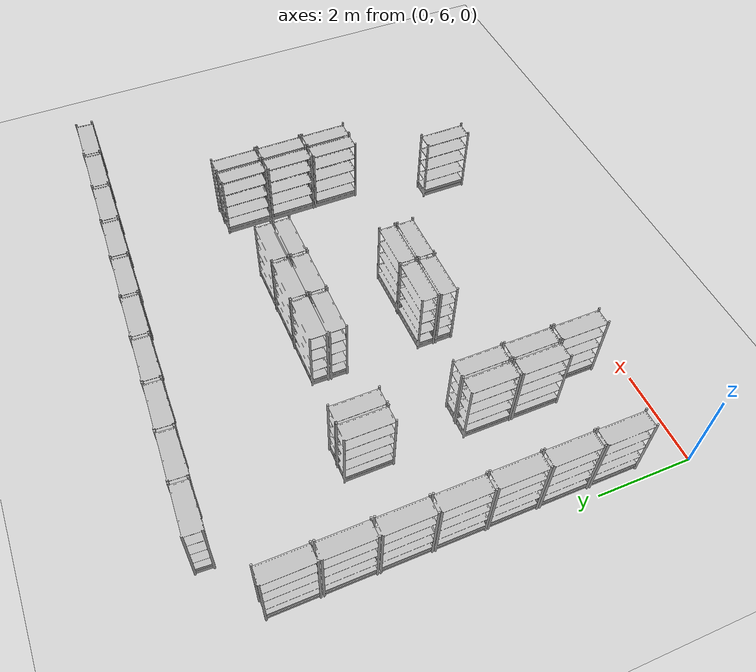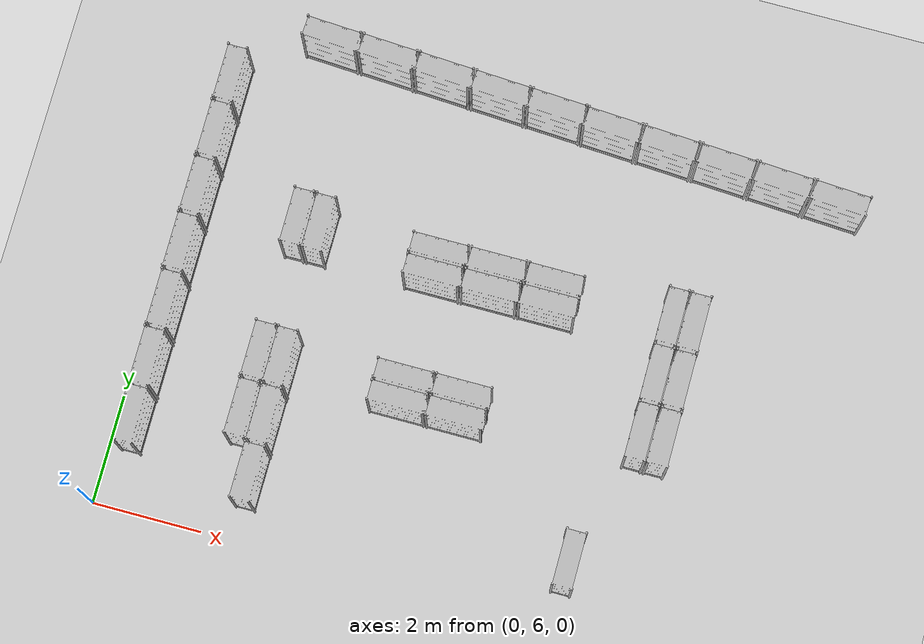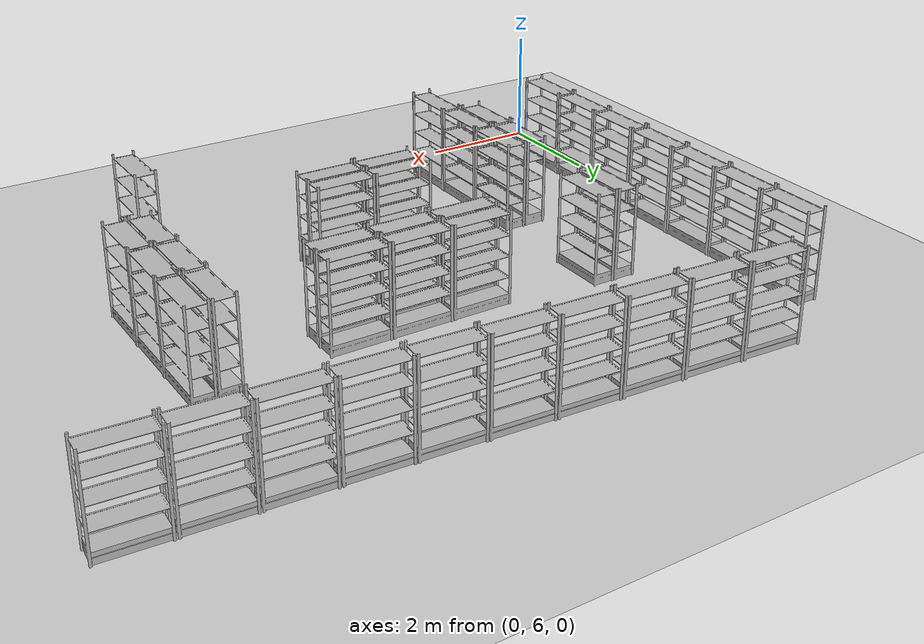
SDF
<sdf version="1.6">
 <world name="default">
  <model name="ground_plane">
   <static>1</static>
   <link name="link">
    <collision name="collision">
     <geometry><plane><normal>0 0 1</normal><size>100 100</size></plane></geometry>
     <surface>
      <contact><collide_bitmask>65535</collide_bitmask></contact>
      <friction><ode><mu>1000</mu><mu2>1000</mu2></ode></friction>
     </surface>
    </collision>
    <visual name="visual">
     <cast_shadows>0</cast_shadows>
     <geometry><plane><normal>0 0 1</normal><size>100 100</size></plane></geometry>
     <material>
      <script><uri>file://media/materials/scripts/gazebo.material</uri><name>Gazebo/Grey</name></script>
     </material>
    </visual>
   </link>
  </model>
  <model name="store_shelf_moduled_9">
   <link name="link">
    <collision name="collision">
     <geometry><mesh><uri>model://store_shelf_moduled/meshes/store_shelf_moduled.dae</uri></mesh></geometry>
    </collision>
    <visual name="visual">
     <geometry><mesh><uri>model://store_shelf_moduled/meshes/store_shelf_moduled.dae</uri></mesh></geometry>
    </visual>
    <inertial>
     <mass>1000</mass>
     <inertia>
      <ixx>840083</ixx>
      <ixy>0</ixy>
      <ixz>0</ixz>
      <iyy>475500</iyy>
      <iyz>0</iyz>
      <izz>1.30208e+06</izz>
     </inertia>
    </inertial>
   </link>
   <static>1</static>
   <pose>12.02416 14.70017 0 0 0 3.083153</pose>
  </model>
  <model name="store_shelf_moduled_10">
   <link name="link">
    <collision name="collision">
     <geometry><mesh><uri>model://store_shelf_moduled/meshes/store_shelf_moduled.dae</uri></mesh></geometry>
    </collision>
    <visual name="visual">
     <geometry><mesh><uri>model://store_shelf_moduled/meshes/store_shelf_moduled.dae</uri></mesh></geometry>
    </visual>
    <inertial>
     <mass>1000</mass>
     <inertia>
      <ixx>840083</ixx>
      <ixy>0</ixy>
      <ixz>0</ixz>
      <iyy>475500</iyy>
      <iyz>0</iyz>
      <izz>1.30208e+06</izz>
     </inertia>
    </inertial>
   </link>
   <static>1</static>
   <pose>10.96416 14.76017 0 0 0 3.083153</pose>
  </model>
  <model name="store_shelf_moduled_11">
   <link name="link">
    <collision name="collision">
     <geometry><mesh><uri>model://store_shelf_moduled/meshes/store_shelf_moduled.dae</uri></mesh></geometry>
    </collision>
    <visual name="visual">
     <geometry><mesh><uri>model://store_shelf_moduled/meshes/store_shelf_moduled.dae</uri></mesh></geometry>
    </visual>
    <inertial>
     <mass>1000</mass>
     <inertia>
      <ixx>840083</ixx>
      <ixy>0</ixy>
      <ixz>0</ixz>
      <iyy>475500</iyy>
      <iyz>0</iyz>
      <izz>1.30208e+06</izz>
     </inertia>
    </inertial>
   </link>
   <static>1</static>
   <pose>9.90416 14.82017 0 0 0 3.083153</pose>
  </model>
  <model name="store_shelf_moduled_12">
   <link name="link">
    <collision name="collision">
     <geometry><mesh><uri>model://store_shelf_moduled/meshes/store_shelf_moduled.dae</uri></mesh></geometry>
    </collision>
    <visual name="visual">
     <geometry><mesh><uri>model://store_shelf_moduled/meshes/store_shelf_moduled.dae</uri></mesh></geometry>
    </visual>
    <inertial>
     <mass>1000</mass>
     <inertia>
      <ixx>840083</ixx>
      <ixy>0</ixy>
      <ixz>0</ixz>
      <iyy>475500</iyy>
      <iyz>0</iyz>
      <izz>1.30208e+06</izz>
     </inertia>
    </inertial>
   </link>
   <static>1</static>
   <pose>8.844159 14.88017 0 0 0 3.083153</pose>
  </model>
  <model name="store_shelf_moduled_13">
   <link name="link">
    <collision name="collision">
     <geometry><mesh><uri>model://store_shelf_moduled/meshes/store_shelf_moduled.dae</uri></mesh></geometry>
    </collision>
    <visual name="visual">
     <geometry><mesh><uri>model://store_shelf_moduled/meshes/store_shelf_moduled.dae</uri></mesh></geometry>
    </visual>
    <inertial>
     <mass>1000</mass>
     <inertia>
      <ixx>840083</ixx>
      <ixy>0</ixy>
      <ixz>0</ixz>
      <iyy>475500</iyy>
      <iyz>0</iyz>
      <izz>1.30208e+06</izz>
     </inertia>
    </inertial>
   </link>
   <static>1</static>
   <pose>7.78416 14.94017 0 0 0 3.083153</pose>
  </model>
  <model name="store_shelf_moduled_14">
   <link name="link">
    <collision name="collision">
     <geometry><mesh><uri>model://store_shelf_moduled/meshes/store_shelf_moduled.dae</uri></mesh></geometry>
    </collision>
    <visual name="visual">
     <geometry><mesh><uri>model://store_shelf_moduled/meshes/store_shelf_moduled.dae</uri></mesh></geometry>
    </visual>
    <inertial>
     <mass>1000</mass>
     <inertia>
      <ixx>840083</ixx>
      <ixy>0</ixy>
      <ixz>0</ixz>
      <iyy>475500</iyy>
      <iyz>0</iyz>
      <izz>1.30208e+06</izz>
     </inertia>
    </inertial>
   </link>
   <static>1</static>
   <pose>6.734159 15.01017 0 0 0 3.083153</pose>
  </model>
  <model name="store_shelf_moduled_15">
   <link name="link">
    <collision name="collision">
     <geometry><mesh><uri>model://store_shelf_moduled/meshes/store_shelf_moduled.dae</uri></mesh></geometry>
    </collision>
    <visual name="visual">
     <geometry><mesh><uri>model://store_shelf_moduled/meshes/store_shelf_moduled.dae</uri></mesh></geometry>
    </visual>
    <inertial>
     <mass>1000</mass>
     <inertia>
      <ixx>840083</ixx>
      <ixy>0</ixy>
      <ixz>0</ixz>
      <iyy>475500</iyy>
      <iyz>0</iyz>
      <izz>1.30208e+06</izz>
     </inertia>
    </inertial>
   </link>
   <static>1</static>
   <pose>5.67416 15.07017 0 0 0 3.083153</pose>
  </model>
  <model name="store_shelf_moduled_16">
   <link name="link">
    <collision name="collision">
     <geometry><mesh><uri>model://store_shelf_moduled/meshes/store_shelf_moduled.dae</uri></mesh></geometry>
    </collision>
    <visual name="visual">
     <geometry><mesh><uri>model://store_shelf_moduled/meshes/store_shelf_moduled.dae</uri></mesh></geometry>
    </visual>
    <inertial>
     <mass>1000</mass>
     <inertia>
      <ixx>840083</ixx>
      <ixy>0</ixy>
      <ixz>0</ixz>
      <iyy>475500</iyy>
      <iyz>0</iyz>
      <izz>1.30208e+06</izz>
     </inertia>
    </inertial>
   </link>
   <static>1</static>
   <pose>4.614159 15.13017 0 0 0 3.083153</pose>
  </model>
  <model name="store_shelf_moduled_17">
   <link name="link">
    <collision name="collision">
     <geometry><mesh><uri>model://store_shelf_moduled/meshes/store_shelf_moduled.dae</uri></mesh></geometry>
    </collision>
    <visual name="visual">
     <geometry><mesh><uri>model://store_shelf_moduled/meshes/store_shelf_moduled.dae</uri></mesh></geometry>
    </visual>
    <inertial>
     <mass>1000</mass>
     <inertia>
      <ixx>840083</ixx>
      <ixy>0</ixy>
      <ixz>0</ixz>
      <iyy>475500</iyy>
      <iyz>0</iyz>
      <izz>1.30208e+06</izz>
     </inertia>
    </inertial>
   </link>
   <static>1</static>
   <pose>3.554159 15.19017 0 0 0 3.083153</pose>
  </model>
  <model name="store_shelf_moduled_18">
   <link name="link">
    <collision name="collision">
     <geometry><mesh><uri>model://store_shelf_moduled/meshes/store_shelf_moduled.dae</uri></mesh></geometry>
    </collision>
    <visual name="visual">
     <geometry><mesh><uri>model://store_shelf_moduled/meshes/store_shelf_moduled.dae</uri></mesh></geometry>
    </visual>
    <inertial>
     <mass>1000</mass>
     <inertia>
      <ixx>840083</ixx>
      <ixy>0</ixy>
      <ixz>0</ixz>
      <iyy>475500</iyy>
      <iyz>0</iyz>
      <izz>1.30208e+06</izz>
     </inertia>
    </inertial>
   </link>
   <static>1</static>
   <pose>2.494159 15.25017 0 0 0 3.083153</pose>
  </model>
  <model name="store_shelf_moduled_19">
   <link name="link">
    <collision name="collision">
     <geometry><mesh><uri>model://store_shelf_moduled/meshes/store_shelf_moduled.dae</uri></mesh></geometry>
    </collision>
    <visual name="visual">
     <geometry><mesh><uri>model://store_shelf_moduled/meshes/store_shelf_moduled.dae</uri></mesh></geometry>
    </visual>
    <inertial>
     <mass>1000</mass>
     <inertia>
      <ixx>840083</ixx>
      <ixy>0</ixy>
      <ixz>0</ixz>
      <iyy>475500</iyy>
      <iyz>0</iyz>
      <izz>1.30208e+06</izz>
     </inertia>
    </inertial>
   </link>
   <static>1</static>
   <pose>0.1999998 14.4402 0 0 0 -1.568844</pose>
  </model>
  <model name="store_shelf_moduled_20">
   <link name="link">
    <collision name="collision">
     <geometry><mesh><uri>model://store_shelf_moduled/meshes/store_shelf_moduled.dae</uri></mesh></geometry>
    </collision>
    <visual name="visual">
     <geometry><mesh><uri>model://store_shelf_moduled/meshes/store_shelf_moduled.dae</uri></mesh></geometry>
    </visual>
    <inertial>
     <mass>1000</mass>
     <inertia>
      <ixx>840083</ixx>
      <ixy>0</ixy>
      <ixz>0</ixz>
      <iyy>475500</iyy>
      <iyz>0</iyz>
      <izz>1.30208e+06</izz>
     </inertia>
    </inertial>
   </link>
   <static>1</static>
   <pose>0.1999998 13.3802 0 0 0 -1.568844</pose>
  </model>
  <model name="store_shelf_moduled_21">
   <link name="link">
    <collision name="collision">
     <geometry><mesh><uri>model://store_shelf_moduled/meshes/store_shelf_moduled.dae</uri></mesh></geometry>
    </collision>
    <visual name="visual">
     <geometry><mesh><uri>model://store_shelf_moduled/meshes/store_shelf_moduled.dae</uri></mesh></geometry>
    </visual>
    <inertial>
     <mass>1000</mass>
     <inertia>
      <ixx>840083</ixx>
      <ixy>0</ixy>
      <ixz>0</ixz>
      <iyy>475500</iyy>
      <iyz>0</iyz>
      <izz>1.30208e+06</izz>
     </inertia>
    </inertial>
   </link>
   <static>1</static>
   <pose>0.1999998 12.3202 0 0 0 -1.568844</pose>
  </model>
  <model name="store_shelf_moduled_22">
   <link name="link">
    <collision name="collision">
     <geometry><mesh><uri>model://store_shelf_moduled/meshes/store_shelf_moduled.dae</uri></mesh></geometry>
    </collision>
    <visual name="visual">
     <geometry><mesh><uri>model://store_shelf_moduled/meshes/store_shelf_moduled.dae</uri></mesh></geometry>
    </visual>
    <inertial>
     <mass>1000</mass>
     <inertia>
      <ixx>840083</ixx>
      <ixy>0</ixy>
      <ixz>0</ixz>
      <iyy>475500</iyy>
      <iyz>0</iyz>
      <izz>1.30208e+06</izz>
     </inertia>
    </inertial>
   </link>
   <static>1</static>
   <pose>0.1999998 11.2602 0 0 0 -1.568844</pose>
  </model>
  <model name="store_shelf_moduled_23">
   <link name="link">
    <collision name="collision">
     <geometry><mesh><uri>model://store_shelf_moduled/meshes/store_shelf_moduled.dae</uri></mesh></geometry>
    </collision>
    <visual name="visual">
     <geometry><mesh><uri>model://store_shelf_moduled/meshes/store_shelf_moduled.dae</uri></mesh></geometry>
    </visual>
    <inertial>
     <mass>1000</mass>
     <inertia>
      <ixx>840083</ixx>
      <ixy>0</ixy>
      <ixz>0</ixz>
      <iyy>475500</iyy>
      <iyz>0</iyz>
      <izz>1.30208e+06</izz>
     </inertia>
    </inertial>
   </link>
   <static>1</static>
   <pose>0.2099998 10.2002 0 0 0 -1.568844</pose>
  </model>
  <model name="store_shelf_moduled_24">
   <link name="link">
    <collision name="collision">
     <geometry><mesh><uri>model://store_shelf_moduled/meshes/store_shelf_moduled.dae</uri></mesh></geometry>
    </collision>
    <visual name="visual">
     <geometry><mesh><uri>model://store_shelf_moduled/meshes/store_shelf_moduled.dae</uri></mesh></geometry>
    </visual>
    <inertial>
     <mass>1000</mass>
     <inertia>
      <ixx>840083</ixx>
      <ixy>0</ixy>
      <ixz>0</ixz>
      <iyy>475500</iyy>
      <iyz>0</iyz>
      <izz>1.30208e+06</izz>
     </inertia>
    </inertial>
   </link>
   <static>1</static>
   <pose>0.2099998 9.140195 0 0 0 -1.568844</pose>
  </model>
  <model name="store_shelf_moduled_25">
   <link name="link">
    <collision name="collision">
     <geometry><mesh><uri>model://store_shelf_moduled/meshes/store_shelf_moduled.dae</uri></mesh></geometry>
    </collision>
    <visual name="visual">
     <geometry><mesh><uri>model://store_shelf_moduled/meshes/store_shelf_moduled.dae</uri></mesh></geometry>
    </visual>
    <inertial>
     <mass>1000</mass>
     <inertia>
      <ixx>840083</ixx>
      <ixy>0</ixy>
      <ixz>0</ixz>
      <iyy>475500</iyy>
      <iyz>0</iyz>
      <izz>1.30208e+06</izz>
     </inertia>
    </inertial>
   </link>
   <static>1</static>
   <pose>0.2099998 8.080195 0 0 0 -1.568844</pose>
  </model>
  <model name="store_shelf_moduled_36">
   <link name="link">
    <collision name="collision">
     <geometry><mesh><uri>model://store_shelf_moduled/meshes/store_shelf_moduled.dae</uri></mesh></geometry>
    </collision>
    <visual name="visual">
     <geometry><mesh><uri>model://store_shelf_moduled/meshes/store_shelf_moduled.dae</uri></mesh></geometry>
    </visual>
    <inertial>
     <mass>1000</mass>
     <inertia>
      <ixx>840083</ixx>
      <ixy>0</ixy>
      <ixz>0</ixz>
      <iyy>475500</iyy>
      <iyz>0</iyz>
      <izz>1.30208e+06</izz>
     </inertia>
    </inertial>
   </link>
   <static>1</static>
   <pose>2.47 7.63 0 0 0 -1.570796</pose>
  </model>
  <model name="store_shelf_moduled_37">
   <link name="link">
    <collision name="collision">
     <geometry><mesh><uri>model://store_shelf_moduled/meshes/store_shelf_moduled.dae</uri></mesh></geometry>
    </collision>
    <visual name="visual">
     <geometry><mesh><uri>model://store_shelf_moduled/meshes/store_shelf_moduled.dae</uri></mesh></geometry>
    </visual>
    <inertial>
     <mass>1000</mass>
     <inertia>
      <ixx>840083</ixx>
      <ixy>0</ixy>
      <ixz>0</ixz>
      <iyy>475500</iyy>
      <iyz>0</iyz>
      <izz>1.30208e+06</izz>
     </inertia>
    </inertial>
   </link>
   <static>1</static>
   <pose>2.47 7.63 0 0 0 1.570796</pose>
  </model>
  <model name="store_shelf_moduled_38">
   <link name="link">
    <collision name="collision">
     <geometry><mesh><uri>model://store_shelf_moduled/meshes/store_shelf_moduled.dae</uri></mesh></geometry>
    </collision>
    <visual name="visual">
     <geometry><mesh><uri>model://store_shelf_moduled/meshes/store_shelf_moduled.dae</uri></mesh></geometry>
    </visual>
    <inertial>
     <mass>1000</mass>
     <inertia>
      <ixx>840083</ixx>
      <ixy>0</ixy>
      <ixz>0</ixz>
      <iyy>475500</iyy>
      <iyz>0</iyz>
      <izz>1.30208e+06</izz>
     </inertia>
    </inertial>
   </link>
   <static>1</static>
   <pose>2.47 8.69 0 0 0 -1.570796</pose>
  </model>
  <model name="store_shelf_moduled_39">
   <link name="link">
    <collision name="collision">
     <geometry><mesh><uri>model://store_shelf_moduled/meshes/store_shelf_moduled.dae</uri></mesh></geometry>
    </collision>
    <visual name="visual">
     <geometry><mesh><uri>model://store_shelf_moduled/meshes/store_shelf_moduled.dae</uri></mesh></geometry>
    </visual>
    <inertial>
     <mass>1000</mass>
     <inertia>
      <ixx>840083</ixx>
      <ixy>0</ixy>
      <ixz>0</ixz>
      <iyy>475500</iyy>
      <iyz>0</iyz>
      <izz>1.30208e+06</izz>
     </inertia>
    </inertial>
   </link>
   <static>1</static>
   <pose>2.47 8.69 0 0 0 1.570796</pose>
  </model>
  <model name="store_shelf_moduled_40">
   <link name="link">
    <collision name="collision">
     <geometry><mesh><uri>model://store_shelf_moduled/meshes/store_shelf_moduled.dae</uri></mesh></geometry>
    </collision>
    <visual name="visual">
     <geometry><mesh><uri>model://store_shelf_moduled/meshes/store_shelf_moduled.dae</uri></mesh></geometry>
    </visual>
    <inertial>
     <mass>1000</mass>
     <inertia>
      <ixx>840083</ixx>
      <ixy>0</ixy>
      <ixz>0</ixz>
      <iyy>475500</iyy>
      <iyz>0</iyz>
      <izz>1.30208e+06</izz>
     </inertia>
    </inertial>
   </link>
   <static>1</static>
   <pose>2.47 9.75 0 0 0 -1.570796</pose>
  </model>
  <model name="store_shelf_moduled_43">
   <link name="link">
    <collision name="collision">
     <geometry><mesh><uri>model://store_shelf_moduled/meshes/store_shelf_moduled.dae</uri></mesh></geometry>
    </collision>
    <visual name="visual">
     <geometry><mesh><uri>model://store_shelf_moduled/meshes/store_shelf_moduled.dae</uri></mesh></geometry>
    </visual>
    <inertial>
     <mass>1000</mass>
     <inertia>
      <ixx>840083</ixx>
      <ixy>0</ixy>
      <ixz>0</ixz>
      <iyy>475500</iyy>
      <iyz>0</iyz>
      <izz>1.30208e+06</izz>
     </inertia>
    </inertial>
   </link>
   <static>1</static>
   <pose>2.47 11.17 0 0 0 1.570796</pose>
  </model>
  <model name="store_shelf_moduled_44">
   <link name="link">
    <collision name="collision">
     <geometry><mesh><uri>model://store_shelf_moduled/meshes/store_shelf_moduled.dae</uri></mesh></geometry>
    </collision>
    <visual name="visual">
     <geometry><mesh><uri>model://store_shelf_moduled/meshes/store_shelf_moduled.dae</uri></mesh></geometry>
    </visual>
    <inertial>
     <mass>1000</mass>
     <inertia>
      <ixx>840083</ixx>
      <ixy>0</ixy>
      <ixz>0</ixz>
      <iyy>475500</iyy>
      <iyz>0</iyz>
      <izz>1.30208e+06</izz>
     </inertia>
    </inertial>
   </link>
   <static>1</static>
   <pose>2.47 12.23 0 0 0 -1.570796</pose>
  </model>
  <model name="store_shelf_moduled_45">
   <link name="link">
    <collision name="collision">
     <geometry><mesh><uri>model://store_shelf_moduled/meshes/store_shelf_moduled.dae</uri></mesh></geometry>
    </collision>
    <visual name="visual">
     <geometry><mesh><uri>model://store_shelf_moduled/meshes/store_shelf_moduled.dae</uri></mesh></geometry>
    </visual>
    <inertial>
     <mass>1000</mass>
     <inertia>
      <ixx>840083</ixx>
      <ixy>0</ixy>
      <ixz>0</ixz>
      <iyy>475500</iyy>
      <iyz>0</iyz>
      <izz>1.30208e+06</izz>
     </inertia>
    </inertial>
   </link>
   <static>1</static>
   <pose>9.33 9.05 0 0 0 1.570796</pose>
  </model>
  <model name="store_shelf_moduled_46">
   <link name="link">
    <collision name="collision">
     <geometry><mesh><uri>model://store_shelf_moduled/meshes/store_shelf_moduled.dae</uri></mesh></geometry>
    </collision>
    <visual name="visual">
     <geometry><mesh><uri>model://store_shelf_moduled/meshes/store_shelf_moduled.dae</uri></mesh></geometry>
    </visual>
    <inertial>
     <mass>1000</mass>
     <inertia>
      <ixx>840083</ixx>
      <ixy>0</ixy>
      <ixz>0</ixz>
      <iyy>475500</iyy>
      <iyz>0</iyz>
      <izz>1.30208e+06</izz>
     </inertia>
    </inertial>
   </link>
   <static>1</static>
   <pose>9.33 10.11 0 0 0 -1.570796</pose>
  </model>
  <model name="store_shelf_moduled_47">
   <link name="link">
    <collision name="collision">
     <geometry><mesh><uri>model://store_shelf_moduled/meshes/store_shelf_moduled.dae</uri></mesh></geometry>
    </collision>
    <visual name="visual">
     <geometry><mesh><uri>model://store_shelf_moduled/meshes/store_shelf_moduled.dae</uri></mesh></geometry>
    </visual>
    <inertial>
     <mass>1000</mass>
     <inertia>
      <ixx>840083</ixx>
      <ixy>0</ixy>
      <ixz>0</ixz>
      <iyy>475500</iyy>
      <iyz>0</iyz>
      <izz>1.30208e+06</izz>
     </inertia>
    </inertial>
   </link>
   <static>1</static>
   <pose>9.33 10.11 0 0 0 1.570796</pose>
  </model>
  <model name="store_shelf_moduled_48">
   <link name="link">
    <collision name="collision">
     <geometry><mesh><uri>model://store_shelf_moduled/meshes/store_shelf_moduled.dae</uri></mesh></geometry>
    </collision>
    <visual name="visual">
     <geometry><mesh><uri>model://store_shelf_moduled/meshes/store_shelf_moduled.dae</uri></mesh></geometry>
    </visual>
    <inertial>
     <mass>1000</mass>
     <inertia>
      <ixx>840083</ixx>
      <ixy>0</ixy>
      <ixz>0</ixz>
      <iyy>475500</iyy>
      <iyz>0</iyz>
      <izz>1.30208e+06</izz>
     </inertia>
    </inertial>
   </link>
   <static>1</static>
   <pose>9.33 11.17 0 0 0 -1.570796</pose>
  </model>
  <model name="store_shelf_moduled_49">
   <link name="link">
    <collision name="collision">
     <geometry><mesh><uri>model://store_shelf_moduled/meshes/store_shelf_moduled.dae</uri></mesh></geometry>
    </collision>
    <visual name="visual">
     <geometry><mesh><uri>model://store_shelf_moduled/meshes/store_shelf_moduled.dae</uri></mesh></geometry>
    </visual>
    <inertial>
     <mass>1000</mass>
     <inertia>
      <ixx>840083</ixx>
      <ixy>0</ixy>
      <ixz>0</ixz>
      <iyy>475500</iyy>
      <iyz>0</iyz>
      <izz>1.30208e+06</izz>
     </inertia>
    </inertial>
   </link>
   <static>1</static>
   <pose>9.33 11.17 0 0 0 1.570796</pose>
  </model>
  <model name="store_shelf_moduled_50">
   <link name="link">
    <collision name="collision">
     <geometry><mesh><uri>model://store_shelf_moduled/meshes/store_shelf_moduled.dae</uri></mesh></geometry>
    </collision>
    <visual name="visual">
     <geometry><mesh><uri>model://store_shelf_moduled/meshes/store_shelf_moduled.dae</uri></mesh></geometry>
    </visual>
    <inertial>
     <mass>1000</mass>
     <inertia>
      <ixx>840083</ixx>
      <ixy>0</ixy>
      <ixz>0</ixz>
      <iyy>475500</iyy>
      <iyz>0</iyz>
      <izz>1.30208e+06</izz>
     </inertia>
    </inertial>
   </link>
   <static>1</static>
   <pose>9.33 12.23 0 0 0 -1.570796</pose>
  </model>
  <model name="store_shelf_moduled_55">
   <link name="link">
    <collision name="collision">
     <geometry><mesh><uri>model://store_shelf_moduled/meshes/store_shelf_moduled.dae</uri></mesh></geometry>
    </collision>
    <visual name="visual">
     <geometry><mesh><uri>model://store_shelf_moduled/meshes/store_shelf_moduled.dae</uri></mesh></geometry>
    </visual>
    <inertial>
     <mass>1000</mass>
     <inertia>
      <ixx>840083</ixx>
      <ixy>0</ixy>
      <ixz>0</ixz>
      <iyy>475500</iyy>
      <iyz>0</iyz>
      <izz>1.30208e+06</izz>
     </inertia>
    </inertial>
   </link>
   <static>1</static>
   <pose>4.31 9.25 0 0 0 0</pose>
  </model>
  <model name="store_shelf_moduled_56">
   <link name="link">
    <collision name="collision">
     <geometry><mesh><uri>model://store_shelf_moduled/meshes/store_shelf_moduled.dae</uri></mesh></geometry>
    </collision>
    <visual name="visual">
     <geometry><mesh><uri>model://store_shelf_moduled/meshes/store_shelf_moduled.dae</uri></mesh></geometry>
    </visual>
    <inertial>
     <mass>1000</mass>
     <inertia>
      <ixx>840083</ixx>
      <ixy>0</ixy>
      <ixz>0</ixz>
      <iyy>475500</iyy>
      <iyz>0</iyz>
      <izz>1.30208e+06</izz>
     </inertia>
    </inertial>
   </link>
   <static>1</static>
   <pose>5.37 9.25 0 0 0 -3.141593</pose>
  </model>
  <model name="store_shelf_moduled_57">
   <link name="link">
    <collision name="collision">
     <geometry><mesh><uri>model://store_shelf_moduled/meshes/store_shelf_moduled.dae</uri></mesh></geometry>
    </collision>
    <visual name="visual">
     <geometry><mesh><uri>model://store_shelf_moduled/meshes/store_shelf_moduled.dae</uri></mesh></geometry>
    </visual>
    <inertial>
     <mass>1000</mass>
     <inertia>
      <ixx>840083</ixx>
      <ixy>0</ixy>
      <ixz>0</ixz>
      <iyy>475500</iyy>
      <iyz>0</iyz>
      <izz>1.30208e+06</izz>
     </inertia>
    </inertial>
   </link>
   <static>1</static>
   <pose>5.37 9.25 0 0 0 0</pose>
  </model>
  <model name="store_shelf_moduled_58">
   <link name="link">
    <collision name="collision">
     <geometry><mesh><uri>model://store_shelf_moduled/meshes/store_shelf_moduled.dae</uri></mesh></geometry>
    </collision>
    <visual name="visual">
     <geometry><mesh><uri>model://store_shelf_moduled/meshes/store_shelf_moduled.dae</uri></mesh></geometry>
    </visual>
    <inertial>
     <mass>1000</mass>
     <inertia>
      <ixx>840083</ixx>
      <ixy>0</ixy>
      <ixz>0</ixz>
      <iyy>475500</iyy>
      <iyz>0</iyz>
      <izz>1.30208e+06</izz>
     </inertia>
    </inertial>
   </link>
   <static>1</static>
   <pose>6.43 9.25 0 0 0 -3.141593</pose>
  </model>
  <model name="store_shelf_moduled_59">
   <link name="link">
    <collision name="collision">
     <geometry><mesh><uri>model://store_shelf_moduled/meshes/store_shelf_moduled.dae</uri></mesh></geometry>
    </collision>
    <visual name="visual">
     <geometry><mesh><uri>model://store_shelf_moduled/meshes/store_shelf_moduled.dae</uri></mesh></geometry>
    </visual>
    <inertial>
     <mass>1000</mass>
     <inertia>
      <ixx>840083</ixx>
      <ixy>0</ixy>
      <ixz>0</ixz>
      <iyy>475500</iyy>
      <iyz>0</iyz>
      <izz>1.30208e+06</izz>
     </inertia>
    </inertial>
   </link>
   <static>1</static>
   <pose>4.31 11.59 0 0 0 0</pose>
  </model>
  <model name="store_shelf_moduled_60">
   <link name="link">
    <collision name="collision">
     <geometry><mesh><uri>model://store_shelf_moduled/meshes/store_shelf_moduled.dae</uri></mesh></geometry>
    </collision>
    <visual name="visual">
     <geometry><mesh><uri>model://store_shelf_moduled/meshes/store_shelf_moduled.dae</uri></mesh></geometry>
    </visual>
    <inertial>
     <mass>1000</mass>
     <inertia>
      <ixx>840083</ixx>
      <ixy>0</ixy>
      <ixz>0</ixz>
      <iyy>475500</iyy>
      <iyz>0</iyz>
      <izz>1.30208e+06</izz>
     </inertia>
    </inertial>
   </link>
   <static>1</static>
   <pose>5.37 11.59 0 0 0 -3.141593</pose>
  </model>
  <model name="store_shelf_moduled_61">
   <link name="link">
    <collision name="collision">
     <geometry><mesh><uri>model://store_shelf_moduled/meshes/store_shelf_moduled.dae</uri></mesh></geometry>
    </collision>
    <visual name="visual">
     <geometry><mesh><uri>model://store_shelf_moduled/meshes/store_shelf_moduled.dae</uri></mesh></geometry>
    </visual>
    <inertial>
     <mass>1000</mass>
     <inertia>
      <ixx>840083</ixx>
      <ixy>0</ixy>
      <ixz>0</ixz>
      <iyy>475500</iyy>
      <iyz>0</iyz>
      <izz>1.30208e+06</izz>
     </inertia>
    </inertial>
   </link>
   <static>1</static>
   <pose>5.37 11.59 0 0 0 0</pose>
  </model>
  <model name="store_shelf_moduled_62">
   <link name="link">
    <collision name="collision">
     <geometry><mesh><uri>model://store_shelf_moduled/meshes/store_shelf_moduled.dae</uri></mesh></geometry>
    </collision>
    <visual name="visual">
     <geometry><mesh><uri>model://store_shelf_moduled/meshes/store_shelf_moduled.dae</uri></mesh></geometry>
    </visual>
    <inertial>
     <mass>1000</mass>
     <inertia>
      <ixx>840083</ixx>
      <ixy>0</ixy>
      <ixz>0</ixz>
      <iyy>475500</iyy>
      <iyz>0</iyz>
      <izz>1.30208e+06</izz>
     </inertia>
    </inertial>
   </link>
   <static>1</static>
   <pose>6.43 11.59 0 0 0 -3.141593</pose>
  </model>
  <model name="store_shelf_moduled_63">
   <link name="link">
    <collision name="collision">
     <geometry><mesh><uri>model://store_shelf_moduled/meshes/store_shelf_moduled.dae</uri></mesh></geometry>
    </collision>
    <visual name="visual">
     <geometry><mesh><uri>model://store_shelf_moduled/meshes/store_shelf_moduled.dae</uri></mesh></geometry>
    </visual>
    <inertial>
     <mass>1000</mass>
     <inertia>
      <ixx>840083</ixx>
      <ixy>0</ixy>
      <ixz>0</ixz>
      <iyy>475500</iyy>
      <iyz>0</iyz>
      <izz>1.30208e+06</izz>
     </inertia>
    </inertial>
   </link>
   <static>1</static>
   <pose>6.43 11.59 0 0 0 0</pose>
  </model>
  <model name="store_shelf_moduled_64">
   <link name="link">
    <collision name="collision">
     <geometry><mesh><uri>model://store_shelf_moduled/meshes/store_shelf_moduled.dae</uri></mesh></geometry>
    </collision>
    <visual name="visual">
     <geometry><mesh><uri>model://store_shelf_moduled/meshes/store_shelf_moduled.dae</uri></mesh></geometry>
    </visual>
    <inertial>
     <mass>1000</mass>
     <inertia>
      <ixx>840083</ixx>
      <ixy>0</ixy>
      <ixz>0</ixz>
      <iyy>475500</iyy>
      <iyz>0</iyz>
      <izz>1.30208e+06</izz>
     </inertia>
    </inertial>
   </link>
   <static>1</static>
   <pose>7.49 11.59 0 0 0 -3.141593</pose>
  </model>
  <model name="store_shelf_moduled_72">
   <link name="link">
    <collision name="collision">
     <geometry><mesh><uri>model://store_shelf_moduled/meshes/store_shelf_moduled.dae</uri></mesh></geometry>
    </collision>
    <visual name="visual">
     <geometry><mesh><uri>model://store_shelf_moduled/meshes/store_shelf_moduled.dae</uri></mesh></geometry>
    </visual>
    <inertial>
     <mass>1000</mass>
     <inertia>
      <ixx>840083</ixx>
      <ixy>0</ixy>
      <ixz>0</ixz>
      <iyy>475500</iyy>
      <iyz>0</iyz>
      <izz>1.30208e+06</izz>
     </inertia>
    </inertial>
   </link>
   <static>1</static>
   <pose>8.27 7.63 0 0 0 -1.570796</pose>
  </model>
 </world>
</sdf>
